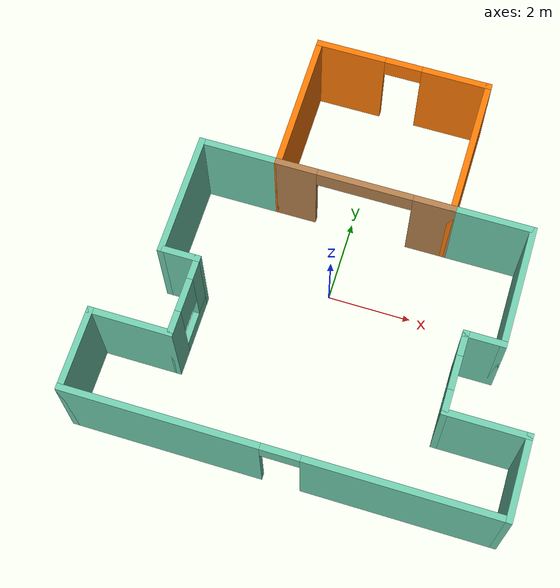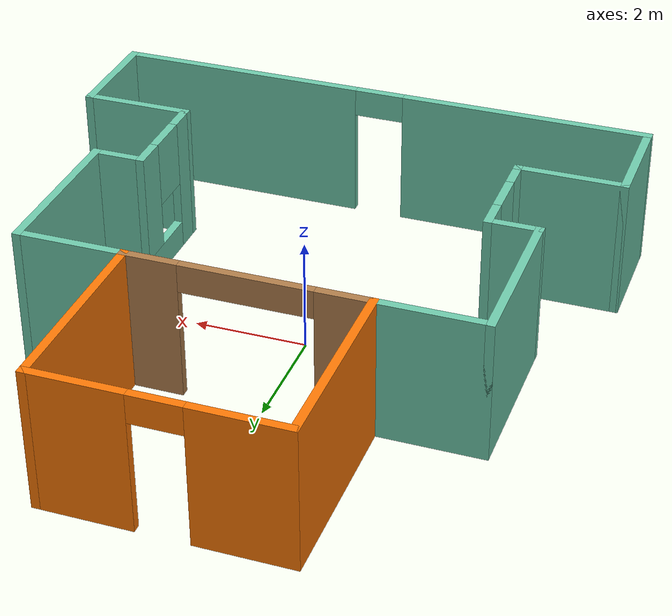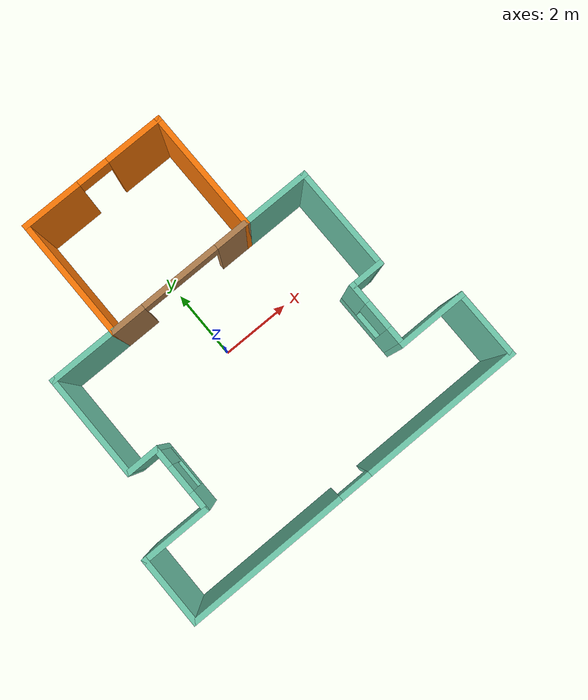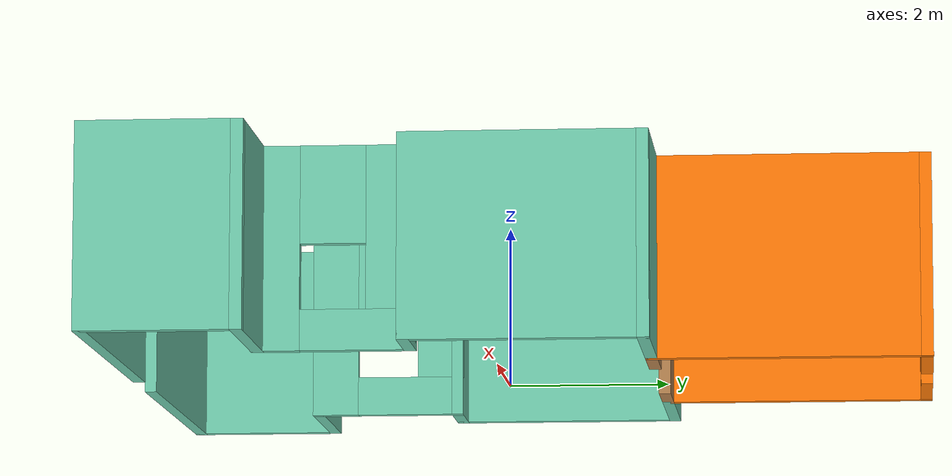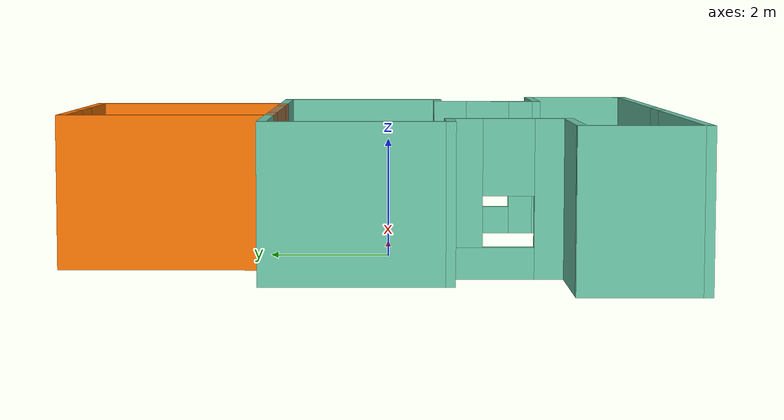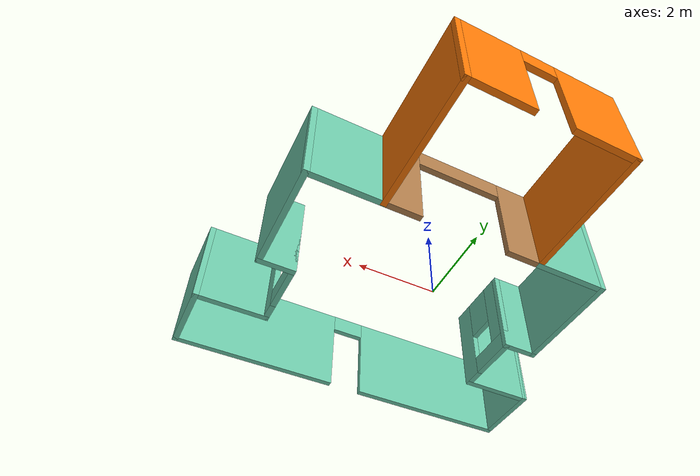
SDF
<?xml version='1.0'?>
<sdf version='1.7'>
  <model name='mybuilding'>
    <pose>0.245 0.31 0 0 -0 0</pose>
    <link name='Wall_0'>
      <pose>-0 -4.95 0 0 -0 0</pose>
      <visual name='Wall_0_Visual_0'>
        <pose>-2.72118 0 1.25 0 -0 0</pose>
        <geometry>
          <box>
            <size>4.55765 0.15 2.5</size>
          </box>
        </geometry>
        <material>
          <script>
            <uri>file://media/materials/scripts/gazebo.material</uri>
            <name>Gazebo/Grey</name>
          </script>
          <ambient>0.435294 0.796078 0.67451 1</ambient>
        </material>
        <meta>
          <layer>0</layer>
        </meta>
      </visual>
      <collision name='Wall_0_Collision_0'>
        <geometry>
          <box>
            <size>4.55765 0.15 2.5</size>
          </box>
        </geometry>
        <pose>-2.72118 0 1.25 0 -0 0</pose>
      </collision>
      <visual name='Wall_0_Visual_1'>
        <pose>2.72882 0 1.25 0 -0 0</pose>
        <geometry>
          <box>
            <size>4.54235 0.15 2.5</size>
          </box>
        </geometry>
        <material>
          <script>
            <uri>file://media/materials/scripts/gazebo.material</uri>
            <name>Gazebo/Grey</name>
          </script>
          <ambient>0.435294 0.796078 0.67451 1</ambient>
        </material>
        <meta>
          <layer>0</layer>
        </meta>
      </visual>
      <collision name='Wall_0_Collision_1'>
        <geometry>
          <box>
            <size>4.54235 0.15 2.5</size>
          </box>
        </geometry>
        <pose>2.72882 0 1.25 0 -0 0</pose>
      </collision>
      <visual name='Wall_0_Visual_2'>
        <pose>0.007647 0 2.25 0 -0 0</pose>
        <geometry>
          <box>
            <size>0.9 0.15 0.5</size>
          </box>
        </geometry>
        <material>
          <script>
            <uri>file://media/materials/scripts/gazebo.material</uri>
            <name>Gazebo/Grey</name>
          </script>
          <ambient>0.435294 0.796078 0.67451 1</ambient>
        </material>
        <meta>
          <layer>0</layer>
        </meta>
      </visual>
      <collision name='Wall_0_Collision_2'>
        <geometry>
          <box>
            <size>0.9 0.15 0.5</size>
          </box>
        </geometry>
        <pose>0.007647 0 2.25 0 -0 0</pose>
      </collision>
    </link>
    <link name='Wall_1'>
      <collision name='Wall_1_Collision'>
        <geometry>
          <box>
            <size>2 0.15 2.5</size>
          </box>
        </geometry>
        <pose>0 0 1.25 0 -0 0</pose>
      </collision>
      <visual name='Wall_1_Visual'>
        <pose>0 0 1.25 0 -0 0</pose>
        <geometry>
          <box>
            <size>2 0.15 2.5</size>
          </box>
        </geometry>
        <material>
          <script>
            <uri>file://media/materials/scripts/gazebo.material</uri>
            <name>Gazebo/Grey</name>
          </script>
          <ambient>0.435294 0.796078 0.67451 1</ambient>
        </material>
        <meta>
          <layer>0</layer>
        </meta>
      </visual>
      <pose>4.925 -4.025 0 0 -0 1.5708</pose>
    </link>
    <link name='Wall_10'>
      <pose>3.075 -2.175 0 0 -0 1.5708</pose>
      <visual name='Wall_10_Visual_0'>
        <pose>-0.7039 0 1.25 0 -0 0</pose>
        <geometry>
          <box>
            <size>0.5922 0.15 2.5</size>
          </box>
        </geometry>
        <material>
          <script>
            <uri>file://media/materials/scripts/gazebo.material</uri>
            <name>Gazebo/Grey</name>
          </script>
          <ambient>0.435294 0.796078 0.67451 1</ambient>
        </material>
        <meta>
          <layer>0</layer>
        </meta>
      </visual>
      <collision name='Wall_10_Collision_0'>
        <geometry>
          <box>
            <size>0.5922 0.15 2.5</size>
          </box>
        </geometry>
        <pose>-0.7039 0 1.25 0 -0 0</pose>
      </collision>
      <visual name='Wall_10_Visual_1'>
        <pose>0.2961 0 0.25 0 -0 0</pose>
        <geometry>
          <box>
            <size>1.4078 0.15 0.5</size>
          </box>
        </geometry>
        <material>
          <script>
            <uri>file://media/materials/scripts/gazebo.material</uri>
            <name>Gazebo/Grey</name>
          </script>
          <ambient>0.435294 0.796078 0.67451 1</ambient>
        </material>
        <meta>
          <layer>0</layer>
        </meta>
      </visual>
      <collision name='Wall_10_Collision_1'>
        <geometry>
          <box>
            <size>1.4078 0.15 0.5</size>
          </box>
        </geometry>
        <pose>0.2961 0 0.25 0 -0 0</pose>
      </collision>
      <visual name='Wall_10_Visual_2'>
        <pose>0.6961 0 1.5 0 -0 0</pose>
        <geometry>
          <box>
            <size>0.6078 0.15 2</size>
          </box>
        </geometry>
        <material>
          <script>
            <uri>file://media/materials/scripts/gazebo.material</uri>
            <name>Gazebo/Grey</name>
          </script>
          <ambient>0.435294 0.796078 0.67451 1</ambient>
        </material>
        <meta>
          <layer>0</layer>
        </meta>
      </visual>
      <collision name='Wall_10_Collision_2'>
        <geometry>
          <box>
            <size>0.6078 0.15 2</size>
          </box>
        </geometry>
        <pose>0.6961 0 1.5 0 -0 0</pose>
      </collision>
      <visual name='Wall_10_Visual_3'>
        <pose>-0.0078 0 1.9 0 -0 0</pose>
        <geometry>
          <box>
            <size>0.8 0.15 1.2</size>
          </box>
        </geometry>
        <material>
          <script>
            <uri>file://media/materials/scripts/gazebo.material</uri>
            <name>Gazebo/Grey</name>
          </script>
          <ambient>0.435294 0.796078 0.67451 1</ambient>
        </material>
        <meta>
          <layer>0</layer>
        </meta>
      </visual>
      <collision name='Wall_10_Collision_3'>
        <geometry>
          <box>
            <size>0.8 0.15 1.2</size>
          </box>
        </geometry>
        <pose>-0.0078 0 1.9 0 -0 0</pose>
      </collision>
    </link>
    <link name='Wall_11'>
      <collision name='Wall_11_Collision'>
        <geometry>
          <box>
            <size>1 0.15 2.5</size>
          </box>
        </geometry>
        <pose>0 0 1.25 0 -0 0</pose>
      </collision>
      <visual name='Wall_11_Visual'>
        <pose>0 0 1.25 0 -0 0</pose>
        <geometry>
          <box>
            <size>1 0.15 2.5</size>
          </box>
        </geometry>
        <material>
          <script>
            <uri>file://media/materials/scripts/gazebo.material</uri>
            <name>Gazebo/Grey</name>
          </script>
          <ambient>0.435294 0.796078 0.67451 1</ambient>
        </material>
        <meta>
          <layer>0</layer>
        </meta>
      </visual>
      <pose>3.5 -1.25 0 0 -0 0</pose>
    </link>
    <link name='Wall_13'>
      <collision name='Wall_13_Collision'>
        <geometry>
          <box>
            <size>3 0.15 2.5</size>
          </box>
        </geometry>
        <pose>0 0 1.25 0 -0 0</pose>
      </collision>
      <visual name='Wall_13_Visual'>
        <pose>0 0 1.25 0 -0 0</pose>
        <geometry>
          <box>
            <size>3 0.15 2.5</size>
          </box>
        </geometry>
        <material>
          <script>
            <uri>file://media/materials/scripts/gazebo.material</uri>
            <name>Gazebo/Grey</name>
          </script>
          <ambient>0.435294 0.796078 0.67451 1</ambient>
        </material>
        <meta>
          <layer>0</layer>
        </meta>
      </visual>
      <pose>-3.925 0.175 0 0 -0 1.5708</pose>
    </link>
    <link name='Wall_15'>
      <collision name='Wall_15_Collision'>
        <geometry>
          <box>
            <size>3 0.15 2.5</size>
          </box>
        </geometry>
        <pose>0 0 1.25 0 -0 0</pose>
      </collision>
      <visual name='Wall_15_Visual'>
        <pose>0 0 1.25 0 -0 0</pose>
        <geometry>
          <box>
            <size>3 0.15 2.5</size>
          </box>
        </geometry>
        <material>
          <script>
            <uri>file://media/materials/scripts/gazebo.material</uri>
            <name>Gazebo/Grey</name>
          </script>
          <ambient>0.435294 0.796078 0.67451 1</ambient>
        </material>
        <meta>
          <layer>0</layer>
        </meta>
      </visual>
      <pose>3.925 0.175 0 0 -0 1.5708</pose>
    </link>
    <link name='Wall_17'>
      <collision name='Wall_17_Collision'>
        <geometry>
          <box>
            <size>2 0.15 2.5</size>
          </box>
        </geometry>
        <pose>0 0 1.25 0 -0 0</pose>
      </collision>
      <visual name='Wall_17_Visual'>
        <pose>0 0 1.25 0 -0 0</pose>
        <geometry>
          <box>
            <size>2 0.15 2.5</size>
          </box>
        </geometry>
        <material>
          <script>
            <uri>file://media/materials/scripts/gazebo.material</uri>
            <name>Gazebo/Grey</name>
          </script>
          <ambient>0.435294 0.796078 0.67451 1</ambient>
        </material>
        <meta>
          <layer>0</layer>
        </meta>
      </visual>
      <pose>-3 1.6 0 0 -0 0</pose>
    </link>
    <link name='Wall_19'>
      <collision name='Wall_19_Collision'>
        <geometry>
          <box>
            <size>2 0.15 2.5</size>
          </box>
        </geometry>
        <pose>0 0 1.25 0 -0 0</pose>
      </collision>
      <visual name='Wall_19_Visual'>
        <pose>0 0 1.25 0 -0 0</pose>
        <geometry>
          <box>
            <size>2 0.15 2.5</size>
          </box>
        </geometry>
        <material>
          <script>
            <uri>file://media/materials/scripts/gazebo.material</uri>
            <name>Gazebo/Grey</name>
          </script>
          <ambient>0.435294 0.796078 0.67451 1</ambient>
        </material>
        <meta>
          <layer>0</layer>
        </meta>
      </visual>
      <pose>3 1.6 0 0 -0 3.14159</pose>
    </link>
    <link name='Wall_2'>
      <collision name='Wall_2_Collision'>
        <geometry>
          <box>
            <size>2 0.15 2.5</size>
          </box>
        </geometry>
        <pose>0 0 1.25 0 -0 0</pose>
      </collision>
      <visual name='Wall_2_Visual'>
        <pose>0 0 1.25 0 -0 0</pose>
        <geometry>
          <box>
            <size>2 0.15 2.5</size>
          </box>
        </geometry>
        <material>
          <script>
            <uri>file://media/materials/scripts/gazebo.material</uri>
            <name>Gazebo/Grey</name>
          </script>
          <ambient>0.435294 0.796078 0.67451 1</ambient>
        </material>
        <meta>
          <layer>0</layer>
        </meta>
      </visual>
      <pose>4 -3.1 0 0 -0 3.14159</pose>
    </link>
    <link name='Wall_21'>
      <collision name='Wall_21_Collision'>
        <geometry>
          <box>
            <size>3.5 0.15 2.5</size>
          </box>
        </geometry>
        <pose>0 0 1.25 0 -0 0</pose>
      </collision>
      <visual name='Wall_21_Visual'>
        <pose>0 0 1.25 0 -0 0</pose>
        <geometry>
          <box>
            <size>3.5 0.15 2.5</size>
          </box>
        </geometry>
        <material>
          <script>
            <uri>file://media/materials/scripts/gazebo.material</uri>
            <name>Gazebo/Grey</name>
          </script>
          <ambient>0.996078 0.47451 0.0196078 1</ambient>
        </material>
        <meta>
          <layer>0</layer>
        </meta>
      </visual>
      <pose>-2.075 3.275 0 0 -0 1.5708</pose>
    </link>
    <link name='Wall_23'>
      <collision name='Wall_23_Collision'>
        <geometry>
          <box>
            <size>3.5 0.15 2.5</size>
          </box>
        </geometry>
        <pose>0 0 1.25 0 -0 0</pose>
      </collision>
      <visual name='Wall_23_Visual'>
        <pose>0 0 1.25 0 -0 0</pose>
        <geometry>
          <box>
            <size>3.5 0.15 2.5</size>
          </box>
        </geometry>
        <material>
          <script>
            <uri>file://media/materials/scripts/gazebo.material</uri>
            <name>Gazebo/Grey</name>
          </script>
          <ambient>0.996078 0.47451 0.0196078 1</ambient>
        </material>
        <meta>
          <layer>0</layer>
        </meta>
      </visual>
      <pose>2.075 3.275 0 0 -0 1.5708</pose>
    </link>
    <link name='Wall_24'>
      <pose>-0 4.95 0 0 -0 3.14159</pose>
      <visual name='Wall_24_Visual_0'>
        <pose>-1.30382 0 1.25 0 -0 0</pose>
        <geometry>
          <box>
            <size>1.69235 0.15 2.5</size>
          </box>
        </geometry>
        <material>
          <script>
            <uri>file://media/materials/scripts/gazebo.material</uri>
            <name>Gazebo/Grey</name>
          </script>
          <ambient>0.996078 0.47451 0.0196078 1</ambient>
        </material>
        <meta>
          <layer>0</layer>
        </meta>
      </visual>
      <collision name='Wall_24_Collision_0'>
        <geometry>
          <box>
            <size>1.69235 0.15 2.5</size>
          </box>
        </geometry>
        <pose>-1.30382 0 1.25 0 -0 0</pose>
      </collision>
      <visual name='Wall_24_Visual_1'>
        <pose>1.29618 0 1.25 0 -0 0</pose>
        <geometry>
          <box>
            <size>1.70765 0.15 2.5</size>
          </box>
        </geometry>
        <material>
          <script>
            <uri>file://media/materials/scripts/gazebo.material</uri>
            <name>Gazebo/Grey</name>
          </script>
          <ambient>0.996078 0.47451 0.0196078 1</ambient>
        </material>
        <meta>
          <layer>0</layer>
        </meta>
      </visual>
      <collision name='Wall_24_Collision_1'>
        <geometry>
          <box>
            <size>1.70765 0.15 2.5</size>
          </box>
        </geometry>
        <pose>1.29618 0 1.25 0 -0 0</pose>
      </collision>
      <visual name='Wall_24_Visual_2'>
        <pose>-0.007647 0 2.25 0 -0 0</pose>
        <geometry>
          <box>
            <size>0.9 0.15 0.5</size>
          </box>
        </geometry>
        <material>
          <script>
            <uri>file://media/materials/scripts/gazebo.material</uri>
            <name>Gazebo/Grey</name>
          </script>
          <ambient>0.996078 0.47451 0.0196078 1</ambient>
        </material>
        <meta>
          <layer>0</layer>
        </meta>
      </visual>
      <collision name='Wall_24_Collision_2'>
        <geometry>
          <box>
            <size>0.9 0.15 0.5</size>
          </box>
        </geometry>
        <pose>-0.007647 0 2.25 0 -0 0</pose>
      </collision>
    </link>
    <link name='Wall_26'>
      <pose>-0 1.6 0 0 -0 0</pose>
      <visual name='Wall_26_Visual_0'>
        <pose>-1.64377 0 1.25 0 -0 0</pose>
        <geometry>
          <box>
            <size>1.01245 0.15 2.5</size>
          </box>
        </geometry>
        <material>
          <script>
            <uri>file://media/materials/scripts/gazebo.material</uri>
            <name>Gazebo/Wood</name>
          </script>
          <ambient>1 1 1 1</ambient>
        </material>
        <meta>
          <layer>0</layer>
        </meta>
      </visual>
      <collision name='Wall_26_Collision_0'>
        <geometry>
          <box>
            <size>1.01245 0.15 2.5</size>
          </box>
        </geometry>
        <pose>-1.64377 0 1.25 0 -0 0</pose>
      </collision>
      <visual name='Wall_26_Visual_1'>
        <pose>1.64363 0 1.25 0 -0 0</pose>
        <geometry>
          <box>
            <size>1.01275 0.15 2.5</size>
          </box>
        </geometry>
        <material>
          <script>
            <uri>file://media/materials/scripts/gazebo.material</uri>
            <name>Gazebo/Wood</name>
          </script>
          <ambient>1 1 1 1</ambient>
        </material>
        <meta>
          <layer>0</layer>
        </meta>
      </visual>
      <collision name='Wall_26_Collision_1'>
        <geometry>
          <box>
            <size>1.01275 0.15 2.5</size>
          </box>
        </geometry>
        <pose>1.64363 0 1.25 0 -0 0</pose>
      </collision>
      <visual name='Wall_26_Visual_2'>
        <pose>-0.000148 0 2.25 0 -0 0</pose>
        <geometry>
          <box>
            <size>2.2748 0.15 0.5</size>
          </box>
        </geometry>
        <material>
          <script>
            <uri>file://media/materials/scripts/gazebo.material</uri>
            <name>Gazebo/Wood</name>
          </script>
          <ambient>1 1 1 1</ambient>
        </material>
        <meta>
          <layer>0</layer>
        </meta>
      </visual>
      <collision name='Wall_26_Collision_2'>
        <geometry>
          <box>
            <size>2.2748 0.15 0.5</size>
          </box>
        </geometry>
        <pose>-0.000148 0 2.25 0 -0 0</pose>
      </collision>
    </link>
    <link name='Wall_4'>
      <collision name='Wall_4_Collision'>
        <geometry>
          <box>
            <size>2 0.15 2.5</size>
          </box>
        </geometry>
        <pose>0 0 1.25 0 -0 0</pose>
      </collision>
      <visual name='Wall_4_Visual'>
        <pose>0 0 1.25 0 -0 0</pose>
        <geometry>
          <box>
            <size>2 0.15 2.5</size>
          </box>
        </geometry>
        <material>
          <script>
            <uri>file://media/materials/scripts/gazebo.material</uri>
            <name>Gazebo/Grey</name>
          </script>
          <ambient>0.435294 0.796078 0.67451 1</ambient>
        </material>
        <meta>
          <layer>0</layer>
        </meta>
      </visual>
      <pose>-4.925 -4.025 0 0 -0 1.5708</pose>
    </link>
    <link name='Wall_5'>
      <collision name='Wall_5_Collision'>
        <geometry>
          <box>
            <size>2 0.15 2.5</size>
          </box>
        </geometry>
        <pose>0 0 1.25 0 -0 0</pose>
      </collision>
      <visual name='Wall_5_Visual'>
        <pose>0 0 1.25 0 -0 0</pose>
        <geometry>
          <box>
            <size>2 0.15 2.5</size>
          </box>
        </geometry>
        <material>
          <script>
            <uri>file://media/materials/scripts/gazebo.material</uri>
            <name>Gazebo/Grey</name>
          </script>
          <ambient>0.435294 0.796078 0.67451 1</ambient>
        </material>
        <meta>
          <layer>0</layer>
        </meta>
      </visual>
      <pose>-4 -3.1 0 0 -0 0</pose>
    </link>
    <link name='Wall_7'>
      <pose>-3.075 -2.175 0 0 -0 1.5708</pose>
      <visual name='Wall_7_Visual_0'>
        <pose>-0.697287 0 1.25 0 -0 0</pose>
        <geometry>
          <box>
            <size>0.605425 0.15 2.5</size>
          </box>
        </geometry>
        <material>
          <script>
            <uri>file://media/materials/scripts/gazebo.material</uri>
            <name>Gazebo/Grey</name>
          </script>
          <ambient>0.435294 0.796078 0.67451 1</ambient>
        </material>
        <meta>
          <layer>0</layer>
        </meta>
      </visual>
      <collision name='Wall_7_Collision_0'>
        <geometry>
          <box>
            <size>0.605425 0.15 2.5</size>
          </box>
        </geometry>
        <pose>-0.697287 0 1.25 0 -0 0</pose>
      </collision>
      <visual name='Wall_7_Visual_1'>
        <pose>0.302713 0 0.25 0 -0 0</pose>
        <geometry>
          <box>
            <size>1.39457 0.15 0.5</size>
          </box>
        </geometry>
        <material>
          <script>
            <uri>file://media/materials/scripts/gazebo.material</uri>
            <name>Gazebo/Grey</name>
          </script>
          <ambient>0.435294 0.796078 0.67451 1</ambient>
        </material>
        <meta>
          <layer>0</layer>
        </meta>
      </visual>
      <collision name='Wall_7_Collision_1'>
        <geometry>
          <box>
            <size>1.39457 0.15 0.5</size>
          </box>
        </geometry>
        <pose>0.302713 0 0.25 0 -0 0</pose>
      </collision>
      <visual name='Wall_7_Visual_2'>
        <pose>0.702713 0 1.5 0 -0 0</pose>
        <geometry>
          <box>
            <size>0.594575 0.15 2</size>
          </box>
        </geometry>
        <material>
          <script>
            <uri>file://media/materials/scripts/gazebo.material</uri>
            <name>Gazebo/Grey</name>
          </script>
          <ambient>0.435294 0.796078 0.67451 1</ambient>
        </material>
        <meta>
          <layer>0</layer>
        </meta>
      </visual>
      <collision name='Wall_7_Collision_2'>
        <geometry>
          <box>
            <size>0.594575 0.15 2</size>
          </box>
        </geometry>
        <pose>0.702713 0 1.5 0 -0 0</pose>
      </collision>
      <visual name='Wall_7_Visual_3'>
        <pose>0.005425 0 1.9 0 -0 0</pose>
        <geometry>
          <box>
            <size>0.8 0.15 1.2</size>
          </box>
        </geometry>
        <material>
          <script>
            <uri>file://media/materials/scripts/gazebo.material</uri>
            <name>Gazebo/Grey</name>
          </script>
          <ambient>0.435294 0.796078 0.67451 1</ambient>
        </material>
        <meta>
          <layer>0</layer>
        </meta>
      </visual>
      <collision name='Wall_7_Collision_3'>
        <geometry>
          <box>
            <size>0.8 0.15 1.2</size>
          </box>
        </geometry>
        <pose>0.005425 0 1.9 0 -0 0</pose>
      </collision>
    </link>
    <link name='Wall_8'>
      <collision name='Wall_8_Collision'>
        <geometry>
          <box>
            <size>1 0.15 2.5</size>
          </box>
        </geometry>
        <pose>0 0 1.25 0 -0 0</pose>
      </collision>
      <visual name='Wall_8_Visual'>
        <pose>0 0 1.25 0 -0 0</pose>
        <geometry>
          <box>
            <size>1 0.15 2.5</size>
          </box>
        </geometry>
        <material>
          <script>
            <uri>file://media/materials/scripts/gazebo.material</uri>
            <name>Gazebo/Grey</name>
          </script>
          <ambient>0.435294 0.796078 0.67451 1</ambient>
        </material>
        <meta>
          <layer>0</layer>
        </meta>
      </visual>
      <pose>-3.5 -1.25 0 0 -0 3.14159</pose>
    </link>
    <static>1</static>
  </model>
</sdf>
